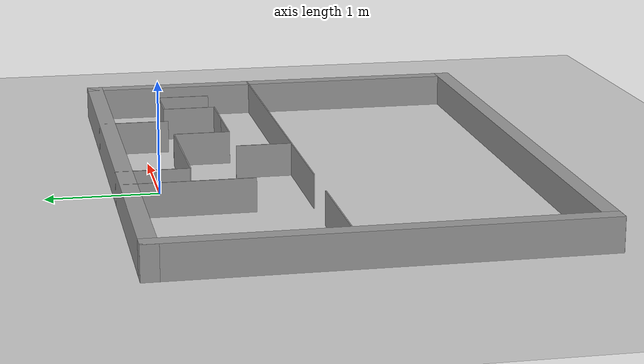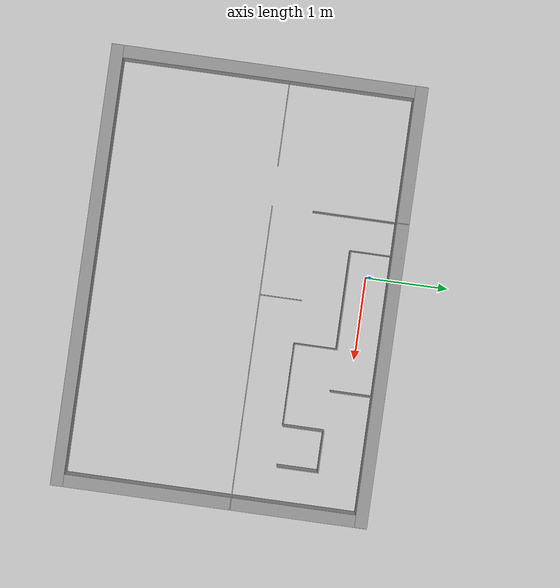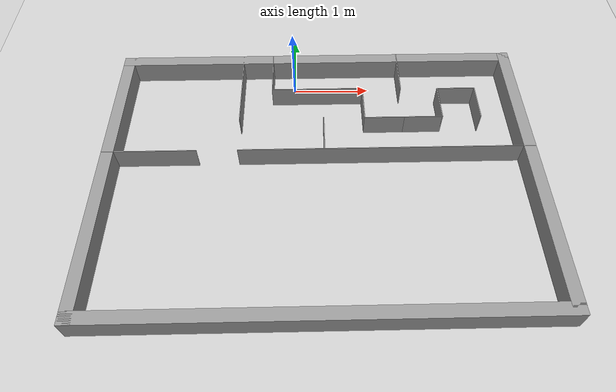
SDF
<sdf version="1.7">
 <world name="default">
  <light name="sun" type="directional">
   <pose>0 0 10 0 -0 0</pose>
   <diffuse>0.8 0.8 0.8 1</diffuse>
   <specular>0.2 0.2 0.2 1</specular>
   <attenuation>
    <range>1000</range>
    <constant>0.9</constant>
    <linear>0.01</linear>
    <quadratic>0.001</quadratic>
   </attenuation>
   <direction>-0.5 0.1 -0.9</direction>
   <spot><inner_angle>0</inner_angle><outer_angle>0</outer_angle><falloff>0</falloff></spot>
  </light>
  <model name="ground_plane">
   <model name="area_electronics">
    <static>1</static>
    <link name="link">
     <visual name="t">
      <pose>2.55 -1.97 0 0 -0 0</pose>
      <geometry><box><size>0.5 0.02 0.001</size></box></geometry>
      <material><ambient>0 0 1 1</ambient></material>
     </visual>
     <visual name="b">
      <pose>2.55 -2.47 0 0 -0 0</pose>
      <geometry><box><size>0.5 0.02 0.001</size></box></geometry>
      <material><ambient>0 0 1 1</ambient></material>
     </visual>
     <visual name="l">
      <pose>2.3 -2.22 0 0 -0 1.5708</pose>
      <geometry><box><size>0.5 0.02 0.001</size></box></geometry>
      <material><ambient>0 0 1 1</ambient></material>
     </visual>
     <visual name="r">
      <pose>2.8 -2.22 0 0 -0 1.5708</pose>
      <geometry><box><size>0.5 0.02 0.001</size></box></geometry>
      <material><ambient>0 0 1 1</ambient></material>
     </visual>
    </link>
   </model>
   <model name="area_daily">
    <static>1</static>
    <link name="link">
     <visual name="t">
      <pose>1 -1.25 0 0 -0 0</pose>
      <geometry><box><size>0.5 0.02 0.001</size></box></geometry>
      <material><ambient>0 0 1 1</ambient></material>
     </visual>
     <visual name="b">
      <pose>1 -1.75 0 0 -0 0</pose>
      <geometry><box><size>0.5 0.02 0.001</size></box></geometry>
      <material><ambient>0 0 1 1</ambient></material>
     </visual>
     <visual name="l">
      <pose>0.75 -1.5 0 0 -0 1.5708</pose>
      <geometry><box><size>0.5 0.02 0.001</size></box></geometry>
      <material><ambient>0 0 1 1</ambient></material>
     </visual>
     <visual name="r">
      <pose>1.25 -1.5 0 0 -0 1.5708</pose>
      <geometry><box><size>0.5 0.02 0.001</size></box></geometry>
      <material><ambient>0 0 1 1</ambient></material>
     </visual>
    </link>
   </model>
   <model name="area_food">
    <static>1</static>
    <link name="link">
     <visual name="t">
      <pose>1 -2.73 0 0 -0 0</pose>
      <geometry><box><size>0.5 0.02 0.001</size></box></geometry>
      <material><ambient>0 0 1 1</ambient></material>
     </visual>
     <visual name="b">
      <pose>1 -3.23 0 0 -0 0</pose>
      <geometry><box><size>0.5 0.02 0.001</size></box></geometry>
      <material><ambient>0 0 1 1</ambient></material>
     </visual>
     <visual name="l">
      <pose>0.75 -2.98 0 0 -0 1.5708</pose>
      <geometry><box><size>0.5 0.02 0.001</size></box></geometry>
      <material><ambient>0 0 1 1</ambient></material>
     </visual>
     <visual name="r">
      <pose>1.25 -2.98 0 0 -0 1.5708</pose>
      <geometry><box><size>0.5 0.02 0.001</size></box></geometry>
      <material><ambient>0 0 1 1</ambient></material>
     </visual>
    </link>
   </model>
   <model name="wall_electronics">
    <static>1</static>
    <pose>2.8 -2.22 0.15 0 -0 3.1415</pose>
    <link name="link">
     <visual name="visual">
      <geometry>
       <mesh><uri>file:///home/ianzhang/gazebo_ws/src/car3/models/sign/meshes/wall_Electronics.obj</uri></mesh>
      </geometry>
     </visual>
    </link>
   </model>
   <model name="wall_daily">
    <static>1</static>
    <pose>1 -1.25 0.15 0 0 -1.5708</pose>
    <link name="link">
     <visual name="visual">
      <geometry>
       <mesh><uri>file:///home/ianzhang/gazebo_ws/src/car3/models/sign/meshes/wall_Daily.obj</uri></mesh>
      </geometry>
     </visual>
    </link>
   </model>
   <model name="wall_food">
    <static>1</static>
    <pose>1 -3.23 0.15 0 -0 1.5708</pose>
    <link name="link">
     <visual name="visual">
      <geometry>
       <mesh><uri>file:///home/ianzhang/gazebo_ws/src/car3/models/sign/meshes/wall_Food.obj</uri></mesh>
      </geometry>
     </visual>
    </link>
   </model>
   <static>1</static>
   <link name="link">
    <collision name="collision">
     <geometry><plane><normal>0 0 1</normal><size>100 100</size></plane></geometry>
     <surface>
      <contact><collide_bitmask>65535</collide_bitmask></contact>
      <friction><ode><mu>100</mu><mu2>50</mu2></ode></friction>
     </surface>
    </collision>
    <visual name="visual">
     <cast_shadows>0</cast_shadows>
     <geometry><plane><normal>0 0 1</normal><size>100 100</size></plane></geometry>
     <material>
      <script><uri>file://media/materials/scripts/gazebo.material</uri><name>Gazebo/Grey</name></script>
     </material>
    </visual>
   </link>
  </model>
  <gravity>0 0 -9.8</gravity>
  <magnetic_field>6e-06 2.3e-05 -4.2e-05</magnetic_field>
  <atmosphere type="adiabatic"/>
  <physics type="ode">
   <max_step_size>0.005</max_step_size>
   <real_time_factor>0.99</real_time_factor>
   <real_time_update_rate>198</real_time_update_rate>
  </physics>
  <scene><ambient>0.4 0.4 0.4 1</ambient><background>0.7 0.7 0.7 1</background><shadows>0</shadows></scene>
  <spherical_coordinates>
   <surface_model>EARTH_WGS84</surface_model>
   <latitude_deg>0</latitude_deg>
   <longitude_deg>0</longitude_deg>
   <elevation>0</elevation>
   <heading_deg>0</heading_deg>
  </spherical_coordinates>
  <model name="math">
   <pose>0.31343 -1.49105 0 0 -0 0</pose>
   <link name="Wall_101">
    <collision name="Wall_101_Collision">
     <geometry><box><size>1.15 0.01 0.3</size></box></geometry>
     <pose>0 0 0.15 0 -0 0</pose>
    </collision>
    <visual name="Wall_101_Visual">
     <pose>0 0 0.15 0 -0 0</pose>
     <geometry><box><size>1.15 0.01 0.3</size></box></geometry>
     <material>
      <script><uri>file://media/materials/scripts/gazebo.material</uri><name>Gazebo/Grey</name></script>
      <ambient>1 1 1 1</ambient>
     </material>
     <meta><layer>0</layer></meta>
    </visual>
    <pose>-1.0059 1.32286 0 0 -0 -1.5708</pose>
   </link>
   <link name="Wall_108">
    <collision name="Wall_108_Collision">
     <geometry><box><size>1.2 0.01 0.3</size></box></geometry>
     <pose>0 0 0.15 0 -0 0</pose>
    </collision>
    <visual name="Wall_108_Visual">
     <pose>0 0 0.15 0 -0 0</pose>
     <geometry><box><size>1.2 0.01 0.3</size></box></geometry>
     <material>
      <script><uri>file://media/materials/scripts/gazebo.material</uri><name>Gazebo/Grey</name></script>
      <ambient>1 1 1 1</ambient>
     </material>
     <meta><layer>0</layer></meta>
    </visual>
    <pose>-0.008652 1.25604 0 0 -0 -0.000141</pose>
   </link>
   <link name="Wall_115">
    <collision name="Wall_115_Collision">
     <geometry><box><size>0.65 0.01 0.3</size></box></geometry>
     <pose>0 0 0.15 0 -0 0</pose>
    </collision>
    <visual name="Wall_115_Visual">
     <pose>0 0 0.15 0 -0 0</pose>
     <geometry><box><size>0.65 0.01 0.3</size></box></geometry>
     <material>
      <script><uri>file://media/materials/scripts/gazebo.material</uri><name>Gazebo/Grey</name></script>
      <ambient>1 1 1 1</ambient>
     </material>
     <meta><layer>0</layer></meta>
    </visual>
    <pose>-0.603578 1.57613 0 0 -0 -1.5708</pose>
   </link>
   <link name="Wall_130">
    <collision name="Wall_130_Collision">
     <geometry><box><size>0.52 0.01 0.3</size></box></geometry>
     <pose>0 0 0.15 0 -0 0</pose>
    </collision>
    <visual name="Wall_130_Visual">
     <pose>0 0 0.15 0 -0 0</pose>
     <geometry><box><size>0.52 0.01 0.3</size></box></geometry>
     <material>
      <script><uri>file://media/materials/scripts/gazebo.material</uri><name>Gazebo/Grey</name></script>
      <ambient>1 1 1 1</ambient>
     </material>
     <meta><layer>0</layer></meta>
    </visual>
    <pose>0.586307 1.00096 0 0 -0 -1.5708</pose>
   </link>
   <link name="Wall_132">
    <collision name="Wall_132_Collision">
     <geometry><box><size>0.51 0.01 0.3</size></box></geometry>
     <pose>0 0 0.15 0 -0 0</pose>
    </collision>
    <visual name="Wall_132_Visual">
     <pose>0 0 0.15 0 -0 0</pose>
     <geometry><box><size>0.51 0.01 0.3</size></box></geometry>
     <material>
      <script><uri>file://media/materials/scripts/gazebo.material</uri><name>Gazebo/Grey</name></script>
      <ambient>1 1 1 1</ambient>
     </material>
     <meta><layer>0</layer></meta>
    </visual>
    <pose>0.836307 0.745958 0 0 -0 0</pose>
   </link>
   <link name="Wall_137">
    <collision name="Wall_137_Collision">
     <geometry><box><size>0.65 0.01 0.3</size></box></geometry>
     <pose>0 0 0.15 0 -0 0</pose>
    </collision>
    <visual name="Wall_137_Visual">
     <pose>0 0 0.15 0 -0 0</pose>
     <geometry><box><size>0.65 0.01 0.3</size></box></geometry>
     <material>
      <script><uri>file://media/materials/scripts/gazebo.material</uri><name>Gazebo/Grey</name></script>
      <ambient>1 1 1 1</ambient>
     </material>
     <meta><layer>0</layer></meta>
    </visual>
    <pose>1.09269 1.5763 0 0 -0 -1.5708</pose>
   </link>
   <link name="Wall_141">
    <collision name="Wall_141_Collision">
     <geometry><box><size>0.5 0.01 0.3</size></box></geometry>
     <pose>0 0 0.15 0 -0 0</pose>
    </collision>
    <visual name="Wall_141_Visual">
     <pose>0 0 0.15 0 -0 0</pose>
     <geometry><box><size>0.5 0.01 0.3</size></box></geometry>
     <material>
      <script><uri>file://media/materials/scripts/gazebo.material</uri><name>Gazebo/Grey</name></script>
      <ambient>1 1 1 1</ambient>
     </material>
     <meta><layer>0</layer></meta>
    </visual>
    <pose>1.33131 0.745958 0 0 -0 0</pose>
   </link>
   <link name="Wall_145">
    <collision name="Wall_145_Collision">
     <geometry><box><size>0.5 0.01 0.3</size></box></geometry>
     <pose>0 0 0.15 0 -0 0</pose>
    </collision>
    <visual name="Wall_145_Visual">
     <pose>0 0 0.15 0 -0 0</pose>
     <geometry><box><size>0.5 0.01 0.3</size></box></geometry>
     <material>
      <script><uri>file://media/materials/scripts/gazebo.material</uri><name>Gazebo/Grey</name></script>
      <ambient>1 1 1 1</ambient>
     </material>
     <meta><layer>0</layer></meta>
    </visual>
    <pose>1.82144 1.23518 0 0 -0 -0.000926</pose>
   </link>
   <link name="Wall_150">
    <collision name="Wall_150_Collision">
     <geometry><box><size>0.5 0.01 0.3</size></box></geometry>
     <pose>0 0 0.15 0 -0 0</pose>
    </collision>
    <visual name="Wall_150_Visual">
     <pose>0 0 0.15 0 -0 0</pose>
     <geometry><box><size>0.5 0.01 0.3</size></box></geometry>
     <material>
      <script><uri>file://media/materials/scripts/gazebo.material</uri><name>Gazebo/Grey</name></script>
      <ambient>1 1 1 1</ambient>
     </material>
     <meta><layer>0</layer></meta>
    </visual>
    <pose>1.57631 0.990958 0 0 -0 1.5708</pose>
   </link>
   <link name="Wall_152">
    <collision name="Wall_152_Collision">
     <geometry><box><size>0.5 0.01 0.3</size></box></geometry>
     <pose>0 0 0.15 0 -0 0</pose>
    </collision>
    <visual name="Wall_152_Visual">
     <pose>0 0 0.15 0 -0 0</pose>
     <geometry><box><size>0.5 0.01 0.3</size></box></geometry>
     <material>
      <script><uri>file://media/materials/scripts/gazebo.material</uri><name>Gazebo/Grey</name></script>
      <ambient>1 1 1 1</ambient>
     </material>
     <meta><layer>0</layer></meta>
    </visual>
    <pose>2.06631 0.989958 0 0 -0 -1.5708</pose>
   </link>
   <link name="Wall_154">
    <collision name="Wall_154_Collision">
     <geometry><box><size>3.65 0.01 0.3</size></box></geometry>
     <pose>0 0 0.15 0 -0 0</pose>
    </collision>
    <visual name="Wall_154_Visual">
     <pose>0 0 0.15 0 -0 0</pose>
     <geometry><box><size>3.65 0.01 0.3</size></box></geometry>
     <material>
      <script><uri>file://media/materials/scripts/gazebo.material</uri><name>Gazebo/Grey</name></script>
      <ambient>1 1 1 1</ambient>
     </material>
     <meta><layer>0</layer></meta>
    </visual>
    <pose>0.824268 0.255399 0 0 -0 0</pose>
   </link>
   <link name="Wall_74">
    <collision name="Wall_74_Collision">
     <geometry><box><size>5.3 0.15 0.3</size></box></geometry>
     <pose>0 0 0.15 0 -0 0</pose>
    </collision>
    <visual name="Wall_74_Visual">
     <pose>0 0 0.15 0 -0 0</pose>
     <geometry><box><size>5.3 0.15 0.3</size></box></geometry>
     <material>
      <script><uri>file://media/materials/scripts/gazebo.material</uri><name>Gazebo/Grey</name></script>
      <ambient>1 1 1 1</ambient>
     </material>
     <meta><layer>0</layer></meta>
    </visual>
    <pose>-0.000824 1.82534 0 0 -0 0</pose>
   </link>
   <link name="Wall_81">
    <collision name="Wall_81_Collision">
     <geometry><box><size>5.3 0.15 0.3</size></box></geometry>
     <pose>0 0 0.15 0 -0 0</pose>
    </collision>
    <visual name="Wall_81_Visual">
     <pose>0 0 0.15 0 -0 0</pose>
     <geometry><box><size>5.3 0.15 0.3</size></box></geometry>
     <material>
      <script><uri>file://media/materials/scripts/gazebo.material</uri><name>Gazebo/Grey</name></script>
      <ambient>1 1 1 1</ambient>
     </material>
     <meta><layer>0</layer></meta>
    </visual>
    <pose>0.000539 -1.8263 0 0 -0 0</pose>
   </link>
   <link name="Wall_90">
    <collision name="Wall_90_Collision">
     <geometry><box><size>3.8 0.15 0.3</size></box></geometry>
     <pose>0 0 0.15 0 -0 0</pose>
    </collision>
    <visual name="Wall_90_Visual">
     <pose>0 0 0.15 0 -0 0</pose>
     <geometry><box><size>3.8 0.15 0.3</size></box></geometry>
     <material>
      <script><uri>file://media/materials/scripts/gazebo.material</uri><name>Gazebo/Grey</name></script>
      <ambient>1 1 1 1</ambient>
     </material>
     <meta><layer>0</layer></meta>
    </visual>
    <pose>2.57582 -0.000547 0 0 -0 -1.5708</pose>
   </link>
   <link name="Wall_92">
    <collision name="Wall_92_Collision">
     <geometry><box><size>3.8 0.15 0.3</size></box></geometry>
     <pose>0 0 0.15 0 -0 0</pose>
    </collision>
    <visual name="Wall_92_Visual">
     <pose>0 0 0.15 0 -0 0</pose>
     <geometry><box><size>3.8 0.15 0.3</size></box></geometry>
     <material>
      <script><uri>file://media/materials/scripts/gazebo.material</uri><name>Gazebo/Grey</name></script>
      <ambient>1 1 1 1</ambient>
     </material>
     <meta><layer>0</layer></meta>
    </visual>
    <pose>-2.5747 0.000388 0 0 -0 -1.5708</pose>
   </link>
   <link name="Wall_97">
    <collision name="Wall_97_Collision">
     <geometry><box><size>1.15 0.01 0.3</size></box></geometry>
     <pose>0 0 0.15 0 -0 0</pose>
    </collision>
    <visual name="Wall_97_Visual">
     <pose>0 0 0.15 0 -0 0</pose>
     <geometry><box><size>1.15 0.01 0.3</size></box></geometry>
     <material>
      <script><uri>file://media/materials/scripts/gazebo.material</uri><name>Gazebo/Grey</name></script>
      <ambient>1 1 1 1</ambient>
     </material>
     <meta><layer>0</layer></meta>
    </visual>
    <pose>-2.07197 0.255874 0 0 -0 0</pose>
   </link>
   <link name="Wall_unit">
    <collision name="Wall_unit_Collision">
     <geometry><box><size>0.01 0.5 0.3</size></box></geometry>
     <pose>0 0 0.15 0 0 0</pose>
    </collision>
    <visual name="Wall_unit_Visual">
     <pose>0 0 0.15 0 0 0</pose>
     <geometry><box><size>0.01 0.5 0.3</size></box></geometry>
     <material>
      <script><uri>file://media/materials/scripts/gazebo.material</uri><name>Gazebo/Grey</name></script>
      <ambient>1 1 1 1</ambient>
     </material>
    </visual>
    <pose>0.06485 0.51040 0 0 0 0</pose>
   </link>
   <static>1</static>
  </model>
 </world>
</sdf>
